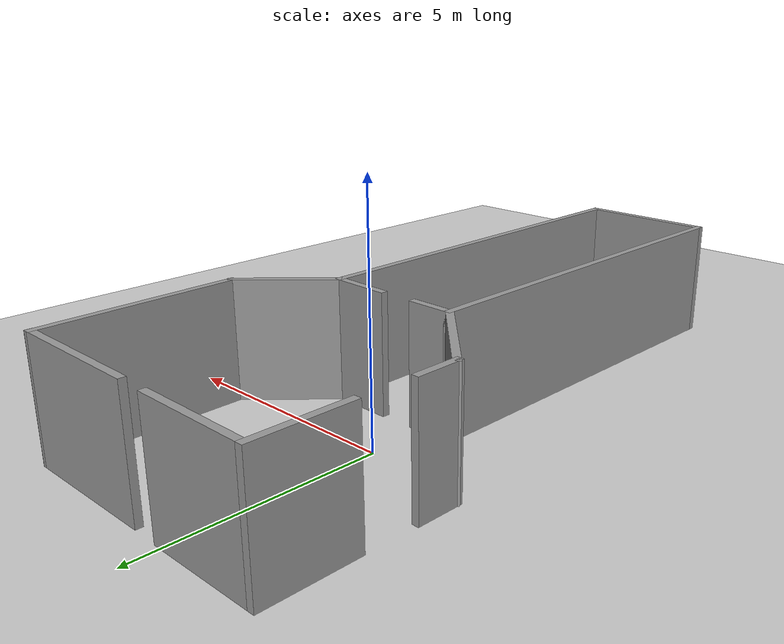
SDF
<sdf version="1.6">
 <world name="default">
  <light name="sun" type="directional">
   <pose>0 0 10 0 -0 0</pose>
   <diffuse>0.8 0.8 0.8 1</diffuse>
   <specular>0.2 0.2 0.2 1</specular>
   <attenuation>
    <range>1000</range>
    <constant>0.9</constant>
    <linear>0.01</linear>
    <quadratic>0.001</quadratic>
   </attenuation>
   <direction>-0.5 0.1 -0.9</direction>
  </light>
  <model name="ground_plane">
   <static>1</static>
   <link name="link">
    <collision name="collision">
     <geometry><plane><normal>0 0 1</normal><size>100 100</size></plane></geometry>
     <surface>
      <contact><collide_bitmask>65535</collide_bitmask></contact>
      <friction><ode><mu>100</mu><mu2>50</mu2></ode></friction>
     </surface>
    </collision>
    <visual name="visual">
     <cast_shadows>0</cast_shadows>
     <geometry><plane><normal>0 0 1</normal><size>100 100</size></plane></geometry>
     <material>
      <script><uri>file://media/materials/scripts/gazebo.material</uri><name>Gazebo/Grey</name></script>
     </material>
    </visual>
   </link>
  </model>
  <gravity>0 0 -9.8</gravity>
  <magnetic_field>6e-06 2.3e-05 -4.2e-05</magnetic_field>
  <atmosphere type="adiabatic"/>
  <physics name="default_physics" default="0" type="ode">
   <max_step_size>0.001</max_step_size>
   <real_time_factor>1</real_time_factor>
   <real_time_update_rate>1000</real_time_update_rate>
  </physics>
  <scene><ambient>0.4 0.4 0.4 1</ambient><background>0.7 0.7 0.7 1</background><shadows>1</shadows></scene>
  <spherical_coordinates>
   <surface_model>EARTH_WGS84</surface_model>
   <latitude_deg>0</latitude_deg>
   <longitude_deg>0</longitude_deg>
   <elevation>0</elevation>
   <heading_deg>0</heading_deg>
  </spherical_coordinates>
  <model name="GazeboKorytarz2">
   <pose>0.997348 -2.83788 0 0 -0 0</pose>
   <link name="Wall_0">
    <collision name="Wall_0_Collision">
     <geometry><box><size>8.75 0.15 2.5</size></box></geometry>
     <pose>0 0 1.25 0 -0 0</pose>
    </collision>
    <visual name="Wall_0_Visual">
     <pose>0 0 1.25 0 -0 0</pose>
     <geometry><box><size>8.75 0.15 2.5</size></box></geometry>
     <material>
      <script><uri>file://media/materials/scripts/gazebo.material</uri><name>Gazebo/Grey</name></script>
      <ambient>1 1 1 1</ambient>
     </material>
     <meta><layer>0</layer></meta>
    </visual>
    <pose>1.2294 -2.76209 0 0 -0 -1.5708</pose>
   </link>
   <link name="Wall_11">
    <collision name="Wall_11_Collision">
     <geometry><box><size>2 0.15 2.5</size></box></geometry>
     <pose>0 0 1.25 0 -0 0</pose>
    </collision>
    <visual name="Wall_11_Visual">
     <pose>0 0 1.25 0 -0 0</pose>
     <geometry><box><size>2 0.15 2.5</size></box></geometry>
     <material>
      <script><uri>file://media/materials/scripts/gazebo.material</uri><name>Gazebo/Grey</name></script>
      <ambient>1 1 1 1</ambient>
     </material>
     <meta><layer>0</layer></meta>
    </visual>
    <pose>-3.20954 6.13708 0 0 -0 1.57087</pose>
   </link>
   <link name="Wall_14">
    <collision name="Wall_14_Collision">
     <geometry><box><size>1 0.15 2.5</size></box></geometry>
     <pose>0 0 1.25 0 -0 0</pose>
    </collision>
    <visual name="Wall_14_Visual">
     <pose>0 0 1.25 0 -0 0</pose>
     <geometry><box><size>1 0.15 2.5</size></box></geometry>
     <material>
      <script><uri>file://media/materials/scripts/gazebo.material</uri><name>Gazebo/Grey</name></script>
      <ambient>1 1 1 1</ambient>
     </material>
     <meta><layer>0</layer></meta>
    </visual>
    <pose>-3.24333 3.55623 0 0 -0 1.5708</pose>
   </link>
   <link name="Wall_16">
    <collision name="Wall_16_Collision">
     <geometry><box><size>2.45 0.15 2.5</size></box></geometry>
     <pose>0 0 1.25 0 -0 0</pose>
    </collision>
    <visual name="Wall_16_Visual">
     <pose>0 0 1.25 0 -0 0</pose>
     <geometry><box><size>2.45 0.15 2.5</size></box></geometry>
     <material>
      <script><uri>file://media/materials/scripts/gazebo.material</uri><name>Gazebo/Grey</name></script>
      <ambient>1 1 1 1</ambient>
     </material>
     <meta><layer>0</layer></meta>
    </visual>
    <pose>-2.0596 7.06191 0 0 -0 0</pose>
   </link>
   <link name="Wall_18">
    <collision name="Wall_18_Collision">
     <geometry><box><size>2.25 0.15 2.5</size></box></geometry>
     <pose>0 0 1.25 0 -0 0</pose>
    </collision>
    <visual name="Wall_18_Visual">
     <pose>0 0 1.25 0 -0 0</pose>
     <geometry><box><size>2.25 0.15 2.5</size></box></geometry>
     <material>
      <script><uri>file://media/materials/scripts/gazebo.material</uri><name>Gazebo/Grey</name></script>
      <ambient>1 1 1 1</ambient>
     </material>
     <meta><layer>0</layer></meta>
    </visual>
    <pose>1.97186 2.28037 0 0 -0 0.785398</pose>
   </link>
   <link name="Wall_19">
    <collision name="Wall_19_Collision">
     <geometry><box><size>4.17045 0.15 2.5</size></box></geometry>
     <pose>0 0 1.25 0 -0 0</pose>
    </collision>
    <visual name="Wall_19_Visual">
     <pose>0 0 1.25 0 -0 0</pose>
     <geometry><box><size>4.17045 0.15 2.5</size></box></geometry>
     <material>
      <script><uri>file://media/materials/scripts/gazebo.material</uri><name>Gazebo/Grey</name></script>
      <ambient>1 1 1 1</ambient>
     </material>
     <meta><layer>0</layer></meta>
    </visual>
    <pose>2.68432 5.03284 0 0 -0 1.58572</pose>
   </link>
   <link name="Wall_2">
    <collision name="Wall_2_Collision">
     <geometry><box><size>3 0.15 2.5</size></box></geometry>
     <pose>0 0 1.25 0 -0 0</pose>
    </collision>
    <visual name="Wall_2_Visual">
     <pose>0 0 1.25 0 -0 0</pose>
     <geometry><box><size>3 0.15 2.5</size></box></geometry>
     <material>
      <script><uri>file://media/materials/scripts/gazebo.material</uri><name>Gazebo/Grey</name></script>
      <ambient>1 1 1 1</ambient>
     </material>
     <meta><layer>0</layer></meta>
    </visual>
    <pose>-0.195602 -7.06209 0 0 -0 3.14159</pose>
   </link>
   <link name="Wall_20">
    <collision name="Wall_20_Collision">
     <geometry><box><size>3 0.15 2.5</size></box></geometry>
     <pose>0 0 1.25 0 -0 0</pose>
    </collision>
    <visual name="Wall_20_Visual">
     <pose>0 0 1.25 0 -0 0</pose>
     <geometry><box><size>3 0.15 2.5</size></box></geometry>
     <material>
      <script><uri>file://media/materials/scripts/gazebo.material</uri><name>Gazebo/Grey</name></script>
      <ambient>1 1 1 1</ambient>
     </material>
     <meta><layer>0</layer></meta>
    </visual>
    <pose>1.23932 7.04284 0 0 -0 3.14159</pose>
   </link>
   <link name="Wall_3">
    <collision name="Wall_3_Collision">
     <geometry><box><size>8.75 0.15 2.5</size></box></geometry>
     <pose>0 0 1.25 0 -0 0</pose>
    </collision>
    <visual name="Wall_3_Visual">
     <pose>0 0 1.25 0 -0 0</pose>
     <geometry><box><size>8.75 0.15 2.5</size></box></geometry>
     <material>
      <script><uri>file://media/materials/scripts/gazebo.material</uri><name>Gazebo/Grey</name></script>
      <ambient>1 1 1 1</ambient>
     </material>
     <meta><layer>0</layer></meta>
    </visual>
    <pose>-1.6206 -2.76209 0 0 -0 1.5708</pose>
   </link>
   <link name="Wall_5">
    <collision name="Wall_5_Collision">
     <geometry><box><size>1 0.15 2.5</size></box></geometry>
     <pose>0 0 1.25 0 -0 0</pose>
    </collision>
    <visual name="Wall_5_Visual">
     <pose>0 0 1.25 0 -0 0</pose>
     <geometry><box><size>1 0.15 2.5</size></box></geometry>
     <material>
      <script><uri>file://media/materials/scripts/gazebo.material</uri><name>Gazebo/Grey</name></script>
      <ambient>1 1 1 1</ambient>
     </material>
     <meta><layer>0</layer></meta>
    </visual>
    <pose>-1.1956 1.53791 0 0 -0 0</pose>
   </link>
   <link name="Wall_7">
    <collision name="Wall_7_Collision">
     <geometry><box><size>1.31771 0.15 2.5</size></box></geometry>
     <pose>0 0 1.25 0 -0 0</pose>
    </collision>
    <visual name="Wall_7_Visual">
     <pose>0 0 1.25 0 -0 0</pose>
     <geometry><box><size>1.31771 0.15 2.5</size></box></geometry>
     <material>
      <script><uri>file://media/materials/scripts/gazebo.material</uri><name>Gazebo/Grey</name></script>
      <ambient>1 1 1 1</ambient>
     </material>
     <meta><layer>0</layer></meta>
    </visual>
    <pose>0.645631 1.54801 0 0 -0 -0.017304</pose>
   </link>
   <link name="Wall_9">
    <collision name="Wall_9_Collision">
     <geometry><box><size>2.43347 0.15 2.5</size></box></geometry>
     <pose>0 0 1.25 0 -0 0</pose>
    </collision>
    <visual name="Wall_9_Visual">
     <pose>0 0 1.25 0 -0 0</pose>
     <geometry><box><size>2.43347 0.15 2.5</size></box></geometry>
     <material>
      <script><uri>file://media/materials/scripts/gazebo.material</uri><name>Gazebo/Grey</name></script>
      <ambient>1 1 1 1</ambient>
     </material>
     <meta><layer>0</layer></meta>
    </visual>
    <pose>-2.43197 2.34118 0 0 -0 -0.780386</pose>
   </link>
   <static>1</static>
  </model>
 </world>
</sdf>
